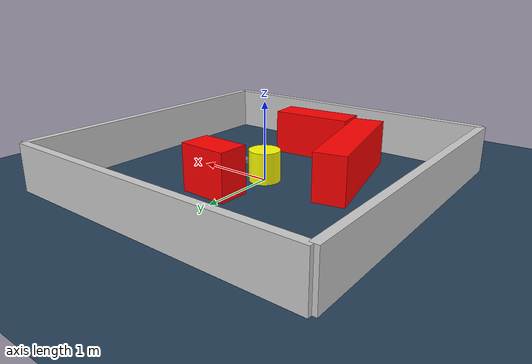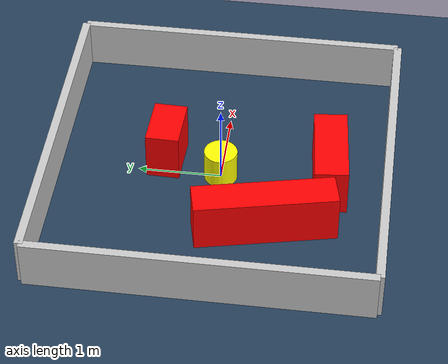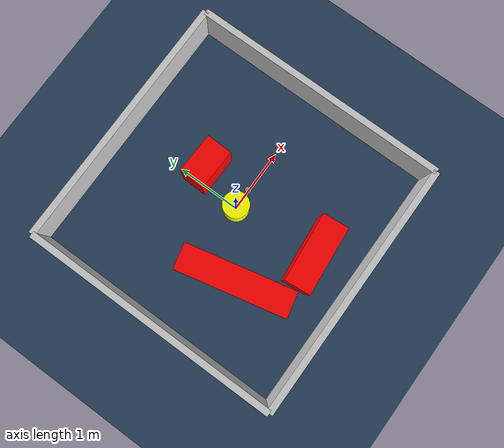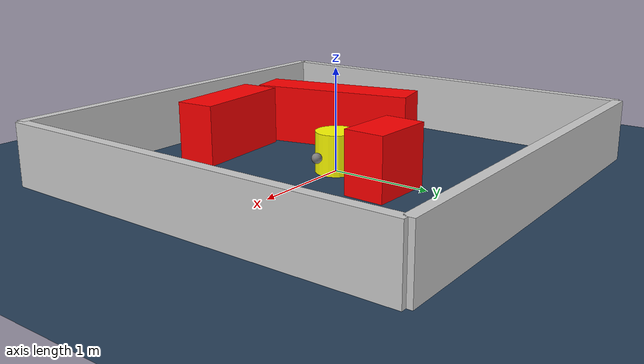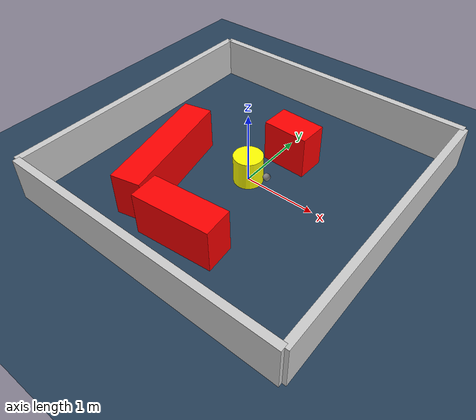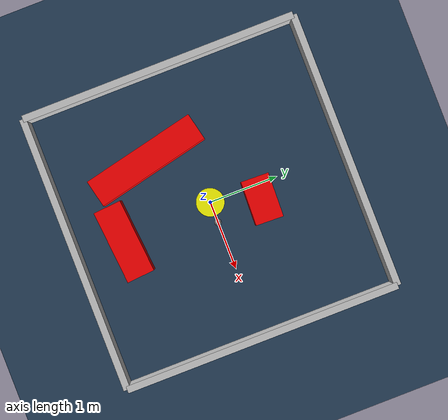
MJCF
<?xml version="1.0" ?>
<mujoco model="generated_environment">
  <option timestep="0.01" integrator="RK4" cone="elliptic"/>
  <default>
    <geom density="1"/>
  </default>
  <asset>
    <texture builtin="gradient" height="3072" rgb1="0.3 0.5 0.7" rgb2="0 0 0" type="skybox" width="512"/>
    <texture builtin="checker" height="300" mark="edge" markrgb="0.8 0.8 0.8" name="groundplane" rgb1="0.2 0.3 0.4" rgb2="0.1 0.2 0.3" type="2d" width="300"/>
    <material name="groundplane" reflectance="0.2" texrepeat="5 5" texture="groundplane" texuniform="true"/>
    <material name="robot" rgba="0.0 1.0 0.0 1"/>
  </asset>
  <worldbody>
    <light dir="0 0 -1" directional="true" pos="0 0 1.5"/>
    <geom condim="4" friction="1.0 0.005 0.001" material="groundplane" name="floor" size="0 0 0.05" type="plane"/>
    <body name="walls">
      <geom name="wall_1" condim="4" pos="-2.0 0.0 0.3" rgba="0.800000011920929 0.800000011920929 0.800000011920929 1.0" size="0.05 2.0 0.3" type="box"/>
      <geom name="wall_2" condim="4" pos="2.0 0.0 0.3" rgba="0.800000011920929 0.800000011920929 0.800000011920929 1.0" size="0.05 2.0 0.3" type="box"/>
      <geom name="wall_3" condim="4" pos="0.0 -2.0 0.3" rgba="0.800000011920929 0.800000011920929 0.800000011920929 1.0" size="2.0 0.05 0.3" type="box"/>
      <geom name="wall_4" condim="4" pos="0.0 2.0 0.3" rgba="0.800000011920929 0.800000011920929 0.800000011920929 1.0" size="2.0 0.05 0.3" type="box"/>
    </body>
    <body name="robot">
      <joint name="joint_x" type="slide" pos="0 0 0" axis="1 0 0"/>
      <joint name="joint_y" type="slide" pos="0 0 0" axis="0 1 0"/>
      <geom name="robot" type="sphere" pos="0.3 0.0 0.2" size="0.05" mass="5." friction="1.0 0.005 0.0001" condim="4" rgba="0.5 0.5 0.5 1.0"/>
      <site name="sensor_ball"/>
    </body>
    <body name="obstacle_movable_1">
      <geom name="obstacle_movable_1" condim="4" pos="0.0 0.0 0.2" euler="0 0 0.0" friction="1.0 0.005 0.001" rgba="1.0 1.0 0.0 1.0" size="0.2 0.2 0.0" type="cylinder" mass="0.1"/>
      <joint type="free"/>
    </body>
    <body name="obstacle_2_static">
      <geom name="obstacle_2_static" condim="4" pos="0.07885241289192213 -1.3066058967229282 0.3" euler="0 0 185.09318136554694" friction="1.0 0.005 0.001" rgba="1 0 0 1" size="0.5327206902225258 0.2 0.3" type="box"/>
    </body>
    <body name="obstacle_3_static">
      <geom name="obstacle_3_static" condim="4" pos="-0.8625425452411146 -0.6191169329984152 0.3" euler="0 0 282.6744169786403" friction="1.0 0.005 0.001" rgba="1 0 0 1" size="0.8387248556249141 0.2 0.3" type="box"/>
    </body>
    <body name="obstacle_4_static">
      <geom name="obstacle_4_static" condim="4" pos="0.21711064575098282 0.6844586736790805 0.3" euler="0 0 358.1815158849732" friction="1.0 0.005 0.001" rgba="1 0 0 1" size="0.318164152176794 0.2 0.3" type="box"/>
    </body>
  </worldbody>
  <actuator>
    <motor name="actuator_x" joint="joint_x" gear="1" ctrlrange="-1 1"/>
    <motor name="actuator_y" joint="joint_y" gear="1" ctrlrange="-1 1"/>
  </actuator>
</mujoco>
